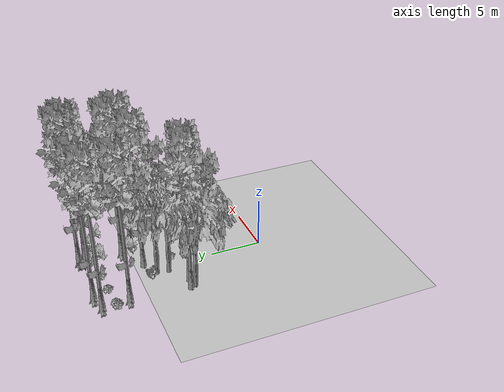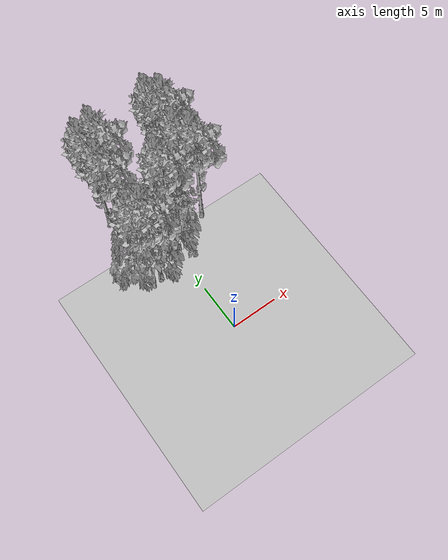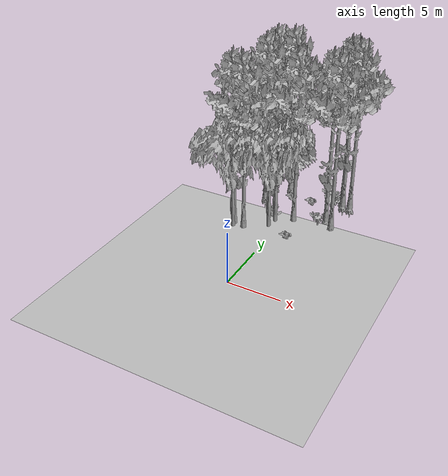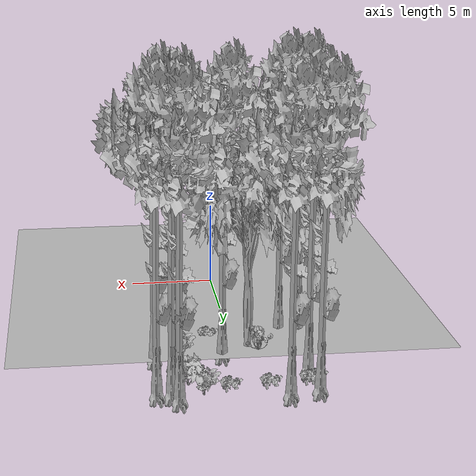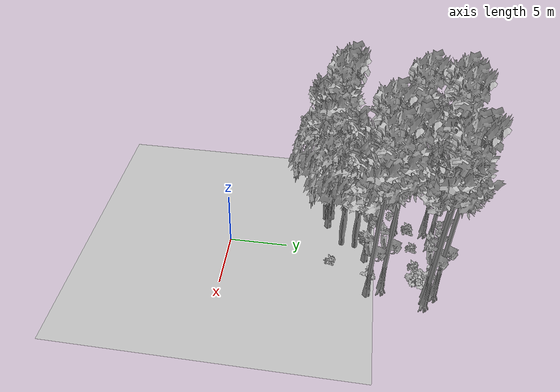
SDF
<sdf version="1.7">
 <world name="default">
  <model name="ground_plane">
   <static>1</static>
   <link name="link">
    <collision name="collision">
     <pose>-50 0 0 0 -0 0</pose>
     <geometry><plane><normal>0 0 1</normal><size>80 80</size></plane></geometry>
     <surface><contact><ode><min_depth>0.01</min_depth><max_vel>0</max_vel></ode></contact></surface>
    </collision>
    <visual name="grass">
     <cast_shadows>0</cast_shadows>
     <geometry>
      <mesh>
       <scale>0.46714285714285714 0.46714285714285714 0.1</scale>
       <uri>file://grass_plane/meshes/grass_plane.dae</uri>
      </mesh>
     </geometry>
    </visual>
   </link>
  </model>
  <model name="Tree 53">
   <static>1</static>
   <pose>4.523561650299158 12.03416433885917 0 1.57079 -0 0</pose>
   <link name="link">
    <collision name="collision">
     <geometry><mesh><scale>3.5 5 3.5</scale><uri>model://tree_9/meshes/tree_9.obj</uri></mesh></geometry>
    </collision>
    <visual name="visual">
     <geometry><mesh><scale>3.5 5 3.5</scale><uri>model://tree_9/meshes/tree_9.obj</uri></mesh></geometry>
    </visual>
   </link>
  </model>
  <model name="Tree 82">
   <static>1</static>
   <pose>3.6345994815896887 17.419098031235066 0 1.57079 -0 0</pose>
   <link name="link">
    <collision name="collision">
     <geometry><mesh><scale>3.5 5 3.5</scale><uri>model://tree_9/meshes/tree_9.obj</uri></mesh></geometry>
    </collision>
    <visual name="visual">
     <geometry><mesh><scale>3.5 5 3.5</scale><uri>model://tree_9/meshes/tree_9.obj</uri></mesh></geometry>
    </visual>
   </link>
  </model>
  <model name="Tree 84">
   <static>1</static>
   <pose>-3.580573832699393 14.354631163666852 0 1.57079 -0 0</pose>
   <link name="link">
    <collision name="collision">
     <geometry><mesh><scale>3.5 5 3.5</scale><uri>model://tree_9/meshes/tree_9.obj</uri></mesh></geometry>
    </collision>
    <visual name="visual">
     <geometry><mesh><scale>3.5 5 3.5</scale><uri>model://tree_9/meshes/tree_9.obj</uri></mesh></geometry>
    </visual>
   </link>
  </model>
  <model name="Tree 86">
   <static>1</static>
   <pose>-3.7054535142964653 16.97838907179925 0 1.57079 -0 0</pose>
   <link name="link">
    <collision name="collision">
     <geometry><mesh><scale>3.5 5 3.5</scale><uri>model://tree_9/meshes/tree_9.obj</uri></mesh></geometry>
    </collision>
    <visual name="visual">
     <geometry><mesh><scale>3.5 5 3.5</scale><uri>model://tree_9/meshes/tree_9.obj</uri></mesh></geometry>
    </visual>
   </link>
  </model>
  <model name="Tree 107">
   <static>1</static>
   <pose>-2.9677676769412287 8.42008982551129 0 1.57079 -0 0</pose>
   <link name="link">
    <collision name="collision">
     <geometry><mesh><scale>3.5 5 3.5</scale><uri>model://tree_9/meshes/tree_9.obj</uri></mesh></geometry>
    </collision>
    <visual name="visual">
     <geometry><mesh><scale>3.5 5 3.5</scale><uri>model://tree_9/meshes/tree_9.obj</uri></mesh></geometry>
    </visual>
   </link>
  </model>
  <model name="Tree 185">
   <static>1</static>
   <pose>-4.051699064687085 8.121336863945324 0 1.57079 -0 0</pose>
   <link name="link">
    <collision name="collision">
     <geometry><mesh><scale>3.5 5 3.5</scale><uri>model://tree_2/meshes/tree_2.obj</uri></mesh></geometry>
    </collision>
    <visual name="visual">
     <geometry><mesh><scale>3.5 5 3.5</scale><uri>model://tree_2/meshes/tree_2.obj</uri></mesh></geometry>
    </visual>
   </link>
  </model>
  <model name="Tree 197">
   <static>1</static>
   <pose>4.730694168056559 16.629055425955826 0 1.57079 -0 0</pose>
   <link name="link">
    <collision name="collision">
     <geometry><mesh><scale>3.5 5 3.5</scale><uri>model://tree_9/meshes/tree_9.obj</uri></mesh></geometry>
    </collision>
    <visual name="visual">
     <geometry><mesh><scale>3.5 5 3.5</scale><uri>model://tree_9/meshes/tree_9.obj</uri></mesh></geometry>
    </visual>
   </link>
  </model>
  <model name="Tree 214">
   <static>1</static>
   <pose>-2.099187207758277 17.387659181444988 0 1.57079 -0 0</pose>
   <link name="link">
    <collision name="collision">
     <geometry><mesh><scale>3.5 5 3.5</scale><uri>model://tree_9/meshes/tree_9.obj</uri></mesh></geometry>
    </collision>
    <visual name="visual">
     <geometry><mesh><scale>3.5 5 3.5</scale><uri>model://tree_9/meshes/tree_9.obj</uri></mesh></geometry>
    </visual>
   </link>
  </model>
  <model name="Tree 219">
   <static>1</static>
   <pose>3.5629212918889834 13.207132314883133 0 1.57079 -0 0</pose>
   <link name="link">
    <collision name="collision">
     <geometry><mesh><scale>3.5 5 3.5</scale><uri>model://tree_9/meshes/tree_9.obj</uri></mesh></geometry>
    </collision>
    <visual name="visual">
     <geometry><mesh><scale>3.5 5 3.5</scale><uri>model://tree_9/meshes/tree_9.obj</uri></mesh></geometry>
    </visual>
   </link>
  </model>
  <model name="Tree 289">
   <static>1</static>
   <pose>0.750534174527985 11.799810051600915 0 1.57079 -0 0</pose>
   <link name="link">
    <collision name="collision">
     <geometry><mesh><scale>3.5 5 3.5</scale><uri>model://tree_9/meshes/tree_9.obj</uri></mesh></geometry>
    </collision>
    <visual name="visual">
     <geometry><mesh><scale>3.5 5 3.5</scale><uri>model://tree_9/meshes/tree_9.obj</uri></mesh></geometry>
    </visual>
   </link>
  </model>
  <model name="Tree 295">
   <static>1</static>
   <pose>-4.082287333963102 8.64732972543571 0 1.57079 -0 0</pose>
   <link name="link">
    <collision name="collision">
     <geometry><mesh><scale>3.5 5 3.5</scale><uri>model://tree_9/meshes/tree_9.obj</uri></mesh></geometry>
    </collision>
    <visual name="visual">
     <geometry><mesh><scale>3.5 5 3.5</scale><uri>model://tree_9/meshes/tree_9.obj</uri></mesh></geometry>
    </visual>
   </link>
  </model>
  <model name="Tree 390">
   <static>1</static>
   <pose>-1.0369721554658469 9.73634364869126 0 1.57079 -0 0</pose>
   <link name="link">
    <collision name="collision">
     <geometry><mesh><scale>3.5 5 3.5</scale><uri>model://tree_2/meshes/tree_2.obj</uri></mesh></geometry>
    </collision>
    <visual name="visual">
     <geometry><mesh><scale>3.5 5 3.5</scale><uri>model://tree_2/meshes/tree_2.obj</uri></mesh></geometry>
    </visual>
   </link>
  </model>
  <model name="Tree 575">
   <static>1</static>
   <pose>-0.8818914733053589 10.881464707048785 0 1.57079 -0 0</pose>
   <link name="link">
    <collision name="collision">
     <geometry><mesh><scale>3.5 5 3.5</scale><uri>model://tree_2/meshes/tree_2.obj</uri></mesh></geometry>
    </collision>
    <visual name="visual">
     <geometry><mesh><scale>3.5 5 3.5</scale><uri>model://tree_2/meshes/tree_2.obj</uri></mesh></geometry>
    </visual>
   </link>
  </model>
  <model name="Tree 594">
   <static>1</static>
   <pose>3.961619556513213 16.682081918798815 0 1.57079 -0 0</pose>
   <link name="link">
    <collision name="collision">
     <geometry><mesh><scale>3.5 5 3.5</scale><uri>model://tree_9/meshes/tree_9.obj</uri></mesh></geometry>
    </collision>
    <visual name="visual">
     <geometry><mesh><scale>3.5 5 3.5</scale><uri>model://tree_9/meshes/tree_9.obj</uri></mesh></geometry>
    </visual>
   </link>
  </model>
  <model name="Bush 53">
   <static>1</static>
   <pose>-3.812718944357023 15.511923700969803 0 1.57079 -0 0</pose>
   <link name="link">
    <collision name="collision">
     <geometry><mesh><scale>2 2 2</scale><uri>model://bush_2/meshes/bush_2.obj</uri></mesh></geometry>
     <surface><contact><collide_without_contact>false</collide_without_contact></contact></surface>
    </collision>
    <visual name="visual">
     <geometry><mesh><scale>2 2 2</scale><uri>model://bush_2/meshes/bush_2.obj</uri></mesh></geometry>
    </visual>
   </link>
  </model>
  <model name="Bush 141">
   <static>1</static>
   <pose>3.1138626293986107 12.194011080440774 0 1.57079 -0 0</pose>
   <link name="link">
    <collision name="collision">
     <geometry><mesh><scale>2 2 2</scale><uri>model://bush_0/meshes/bush_0.obj</uri></mesh></geometry>
     <surface><contact><collide_without_contact>false</collide_without_contact></contact></surface>
    </collision>
    <visual name="visual">
     <geometry><mesh><scale>2 2 2</scale><uri>model://bush_0/meshes/bush_0.obj</uri></mesh></geometry>
    </visual>
   </link>
  </model>
  <model name="Bush 150">
   <static>1</static>
   <pose>0.821765672047654 15.917079308501407 0 1.57079 -0 0</pose>
   <link name="link">
    <collision name="collision">
     <geometry><mesh><scale>2 2 2</scale><uri>model://bush_2/meshes/bush_2.obj</uri></mesh></geometry>
     <surface><contact><collide_without_contact>false</collide_without_contact></contact></surface>
    </collision>
    <visual name="visual">
     <geometry><mesh><scale>2 2 2</scale><uri>model://bush_2/meshes/bush_2.obj</uri></mesh></geometry>
    </visual>
   </link>
  </model>
  <model name="Bush 258">
   <static>1</static>
   <pose>-3.4412492908329426 15.583183613363232 0 1.57079 -0 0</pose>
   <link name="link">
    <collision name="collision">
     <geometry><mesh><scale>2 2 2</scale><uri>model://bush_2/meshes/bush_2.obj</uri></mesh></geometry>
     <surface><contact><collide_without_contact>false</collide_without_contact></contact></surface>
    </collision>
    <visual name="visual">
     <geometry><mesh><scale>2 2 2</scale><uri>model://bush_2/meshes/bush_2.obj</uri></mesh></geometry>
    </visual>
   </link>
  </model>
  <model name="Bush 321">
   <static>1</static>
   <pose>1.2442583177619042 8.893731669945353 0 1.57079 -0 0</pose>
   <link name="link">
    <collision name="collision">
     <geometry><mesh><scale>2 2 2</scale><uri>model://bush_2/meshes/bush_2.obj</uri></mesh></geometry>
     <surface><contact><collide_without_contact>false</collide_without_contact></contact></surface>
    </collision>
    <visual name="visual">
     <geometry><mesh><scale>2 2 2</scale><uri>model://bush_2/meshes/bush_2.obj</uri></mesh></geometry>
    </visual>
   </link>
  </model>
  <model name="Bush 338">
   <static>1</static>
   <pose>-1.332512632437215 11.516177140940584 0 1.57079 -0 0</pose>
   <link name="link">
    <collision name="collision">
     <geometry><mesh><scale>2 2 2</scale><uri>model://bush_4/meshes/bush_4.obj</uri></mesh></geometry>
     <surface><contact><collide_without_contact>false</collide_without_contact></contact></surface>
    </collision>
    <visual name="visual">
     <geometry><mesh><scale>2 2 2</scale><uri>model://bush_4/meshes/bush_4.obj</uri></mesh></geometry>
    </visual>
   </link>
  </model>
  <model name="Bush 403">
   <static>1</static>
   <pose>2.340044412368364 17.1157079006689 0 1.57079 -0 0</pose>
   <link name="link">
    <collision name="collision">
     <geometry><mesh><scale>2 2 2</scale><uri>model://bush_0/meshes/bush_0.obj</uri></mesh></geometry>
     <surface><contact><collide_without_contact>false</collide_without_contact></contact></surface>
    </collision>
    <visual name="visual">
     <geometry><mesh><scale>2 2 2</scale><uri>model://bush_0/meshes/bush_0.obj</uri></mesh></geometry>
    </visual>
   </link>
  </model>
  <model name="Bush 486">
   <static>1</static>
   <pose>-1.3053245832250653 15.807443415448532 0 1.57079 -0 0</pose>
   <link name="link">
    <collision name="collision">
     <geometry><mesh><scale>2 2 2</scale><uri>model://bush_2/meshes/bush_2.obj</uri></mesh></geometry>
     <surface><contact><collide_without_contact>false</collide_without_contact></contact></surface>
    </collision>
    <visual name="visual">
     <geometry><mesh><scale>2 2 2</scale><uri>model://bush_2/meshes/bush_2.obj</uri></mesh></geometry>
    </visual>
   </link>
  </model>
  <model name="Bush 511">
   <static>1</static>
   <pose>3.018774679179252 15.840950275564722 0 1.57079 -0 0</pose>
   <link name="link">
    <collision name="collision">
     <geometry><mesh><scale>2 2 2</scale><uri>model://bush_1/meshes/bush_1.obj</uri></mesh></geometry>
     <surface><contact><collide_without_contact>false</collide_without_contact></contact></surface>
    </collision>
    <visual name="visual">
     <geometry><mesh><scale>2 2 2</scale><uri>model://bush_1/meshes/bush_1.obj</uri></mesh></geometry>
    </visual>
   </link>
  </model>
 </world>
</sdf>
